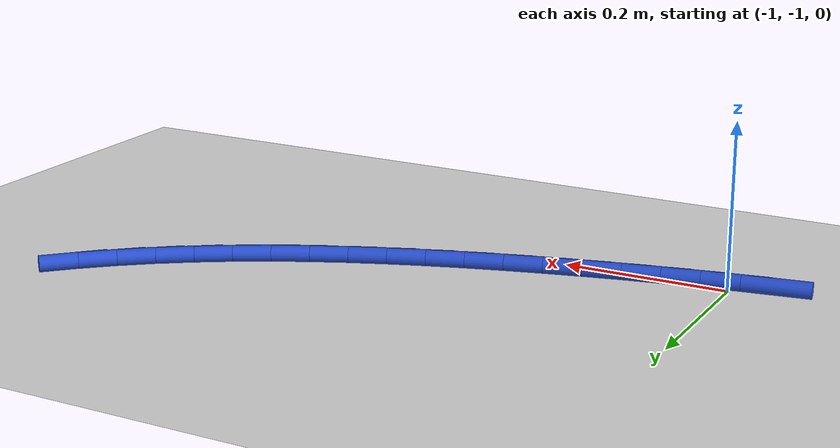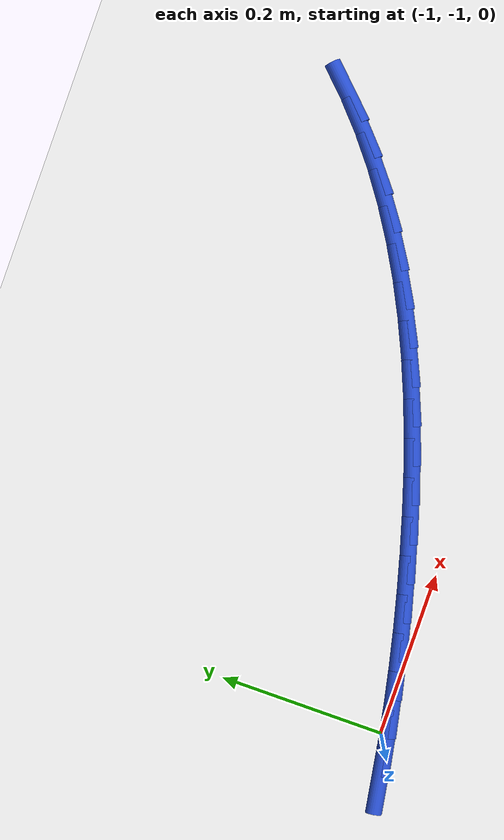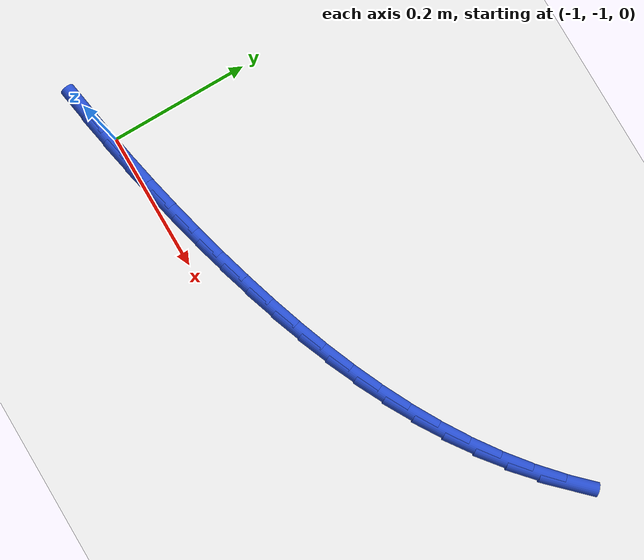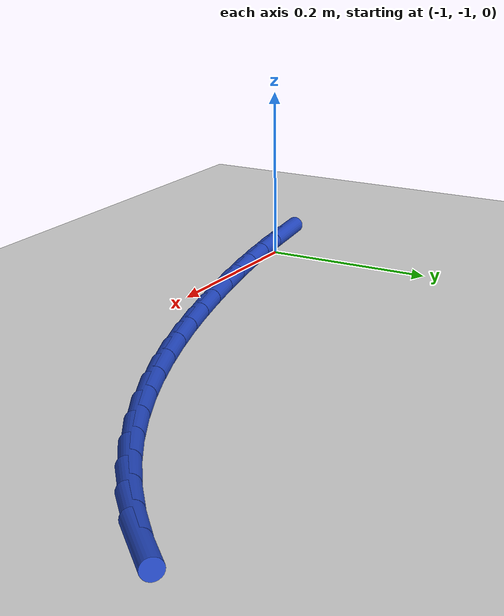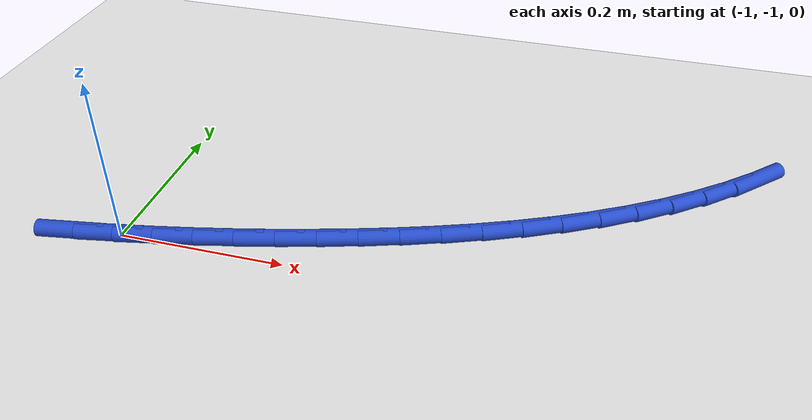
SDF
<sdf version="1.6">
 <world name="default">
  <model name="ground_plane">
   <static>1</static>
   <link name="link">
    <collision name="collision">
     <geometry><plane><normal>0 0 1</normal><size>100 100</size></plane></geometry>
     <surface><friction><ode><mu>100</mu><mu2>50</mu2></ode></friction></surface>
    </collision>
    <visual name="visual">
     <cast_shadows>0</cast_shadows>
     <geometry><plane><normal>0 0 1</normal><size>100 100</size></plane></geometry>
     <material>
      <script><uri>file://media/materials/scripts/gazebo.material</uri><name>Gazebo/WhiteGlow</name></script>
     </material>
    </visual>
   </link>
  </model>
  <model name="line">
   <link name="link_115">
    <pose>-1.0518412274918332 -1.016220963394209 0.01 0 1.57 0.15997338928918414</pose>
    <collision name="collision">
     <geometry><cylinder><radius>0.01</radius><length>0.08</length></cylinder></geometry>
    </collision>
    <visual name="visual">
     <material>
      <script><name>Gazebo/Blue</name><uri>file://media/materials/scripts/gazebo.material</uri></script>
     </material>
     <geometry><cylinder><radius>0.01</radius><length>0.08</length></cylinder></geometry>
    </visual>
   </link>
   <link name="link_116">
    <pose>-1.0066407417614862 -1.0089277675191928 0.01 0 1.57 0.1820671145373733</pose>
    <collision name="collision">
     <geometry><cylinder><radius>0.01</radius><length>0.08</length></cylinder></geometry>
    </collision>
    <visual name="visual">
     <material>
      <script><name>Gazebo/Blue</name><uri>file://media/materials/scripts/gazebo.material</uri></script>
     </material>
     <geometry><cylinder><radius>0.01</radius><length>0.08</length></cylinder></geometry>
    </visual>
   </link>
   <link name="link_117">
    <pose>-0.961563545083438 -1.0006287897275916 0.01 0 1.57 0.2033848215068793</pose>
    <collision name="collision">
     <geometry><cylinder><radius>0.01</radius><length>0.08</length></cylinder></geometry>
    </collision>
    <visual name="visual">
     <material>
      <script><name>Gazebo/Blue</name><uri>file://media/materials/scripts/gazebo.material</uri></script>
     </material>
     <geometry><cylinder><radius>0.01</radius><length>0.08</length></cylinder></geometry>
    </visual>
   </link>
   <link name="link_118">
    <pose>-0.9165846387984776 -0.9913525030561621 0.01 0 1.57 0.22388526568458142</pose>
    <collision name="collision">
     <geometry><cylinder><radius>0.01</radius><length>0.08</length></cylinder></geometry>
    </collision>
    <visual name="visual">
     <material>
      <script><name>Gazebo/Blue</name><uri>file://media/materials/scripts/gazebo.material</uri></script>
     </material>
     <geometry><cylinder><radius>0.01</radius><length>0.08</length></cylinder></geometry>
    </visual>
   </link>
   <link name="link_119">
    <pose>-0.8716790242473987 -0.9811273805416627 0.01 0 1.57 0.2435336659757726</pose>
    <collision name="collision">
     <geometry><cylinder><radius>0.01</radius><length>0.08</length></cylinder></geometry>
    </collision>
    <visual name="visual">
     <material>
      <script><name>Gazebo/Blue</name><uri>file://media/materials/scripts/gazebo.material</uri></script>
     </material>
     <geometry><cylinder><radius>0.01</radius><length>0.08</length></cylinder></geometry>
    </visual>
   </link>
   <link name="link_120">
    <pose>-0.8268217027709909 -0.9699818952208503 0.01 0 1.57 0.2623176508304362</pose>
    <collision name="collision">
     <geometry><cylinder><radius>0.01</radius><length>0.08</length></cylinder></geometry>
    </collision>
    <visual name="visual">
     <material>
      <script><name>Gazebo/Blue</name><uri>file://media/materials/scripts/gazebo.material</uri></script>
     </material>
     <geometry><cylinder><radius>0.01</radius><length>0.08</length></cylinder></geometry>
    </visual>
   </link>
   <link name="link_121">
    <pose>-0.7819883966441457 -0.9579439399140669 0.01 0 1.57 0.2816082944401738</pose>
    <collision name="collision">
     <geometry><cylinder><radius>0.01</radius><length>0.08</length></cylinder></geometry>
    </collision>
    <visual name="visual">
     <material>
      <script><name>Gazebo/Blue</name><uri>file://media/materials/scripts/gazebo.material</uri></script>
     </material>
     <geometry><cylinder><radius>0.01</radius><length>0.08</length></cylinder></geometry>
    </visual>
   </link>
   <link name="link_122">
    <pose>-0.7372166666986409 -0.9449916390288912 0.01 0 1.57 0.3038957433538385</pose>
    <collision name="collision">
     <geometry><cylinder><radius>0.01</radius><length>0.08</length></cylinder></geometry>
    </collision>
    <visual name="visual">
     <material>
      <script><name>Gazebo/Blue</name><uri>file://media/materials/scripts/gazebo.material</uri></script>
     </material>
     <geometry><cylinder><radius>0.01</radius><length>0.08</length></cylinder></geometry>
    </visual>
   </link>
   <link name="link_123">
    <pose>-0.6926524830506744 -0.9310158678796732 0.01 0 1.57 0.3295482642773459</pose>
    <collision name="collision">
     <geometry><cylinder><radius>0.01</radius><length>0.08</length></cylinder></geometry>
    </collision>
    <visual name="visual">
     <material>
      <script><name>Gazebo/Blue</name><uri>file://media/materials/scripts/gazebo.material</uri></script>
     </material>
     <geometry><cylinder><radius>0.01</radius><length>0.08</length></cylinder></geometry>
    </visual>
   </link>
   <link name="link_124">
    <pose>-0.6484527813486013 -0.9158986765888811 0.01 0 1.57 0.35871456310700517</pose>
    <collision name="collision">
     <geometry><cylinder><radius>0.01</radius><length>0.08</length></cylinder></geometry>
    </collision>
    <visual name="visual">
     <material>
      <script><name>Gazebo/Blue</name><uri>file://media/materials/scripts/gazebo.material</uri></script>
     </material>
     <geometry><cylinder><radius>0.01</radius><length>0.08</length></cylinder></geometry>
    </visual>
   </link>
   <link name="link_125">
    <pose>-0.6047744972407759 -0.8995221152789818 0.01 0 1.57 0.39156166444364054</pose>
    <collision name="collision">
     <geometry><cylinder><radius>0.01</radius><length>0.08</length></cylinder></geometry>
    </collision>
    <visual name="visual">
     <material>
      <script><name>Gazebo/Blue</name><uri>file://media/materials/scripts/gazebo.material</uri></script>
     </material>
     <geometry><cylinder><radius>0.01</radius><length>0.08</length></cylinder></geometry>
    </visual>
   </link>
   <link name="link_126">
    <pose>-0.5617745663755506 -0.8817682340724422 0.01 0 1.57 0.42826563066687007</pose>
    <collision name="collision">
     <geometry><cylinder><radius>0.01</radius><length>0.08</length></cylinder></geometry>
    </collision>
    <visual name="visual">
     <material>
      <script><name>Gazebo/Blue</name><uri>file://media/materials/scripts/gazebo.material</uri></script>
     </material>
     <geometry><cylinder><radius>0.01</radius><length>0.08</length></cylinder></geometry>
    </visual>
   </link>
   <link name="link_127">
    <pose>-0.5196099244012805 -0.8625190830917291 0.01 0 1.57 0.4689991593552063</pose>
    <collision name="collision">
     <geometry><cylinder><radius>0.01</radius><length>0.08</length></cylinder></geometry>
    </collision>
    <visual name="visual">
     <material>
      <script><name>Gazebo/Blue</name><uri>file://media/materials/scripts/gazebo.material</uri></script>
     </material>
     <geometry><cylinder><radius>0.01</radius><length>0.08</length></cylinder></geometry>
    </visual>
   </link>
   <link name="link_128">
    <pose>-0.4784375069663181 -0.8416567124593094 0.01 0 1.57 0.513915245584349</pose>
    <collision name="collision">
     <geometry><cylinder><radius>0.01</radius><length>0.08</length></cylinder></geometry>
    </collision>
    <visual name="visual">
     <material>
      <script><name>Gazebo/Blue</name><uri>file://media/materials/scripts/gazebo.material</uri></script>
     </material>
     <geometry><cylinder><radius>0.01</radius><length>0.08</length></cylinder></geometry>
    </visual>
   </link>
   <link name="link_129">
    <pose>-0.4384142497190179 -0.8190631722976499 0.01 0 1.57 0.5631263519577232</pose>
    <collision name="collision">
     <geometry><cylinder><radius>0.01</radius><length>0.08</length></cylinder></geometry>
    </collision>
    <visual name="visual">
     <material>
      <script><name>Gazebo/Blue</name><uri>file://media/materials/scripts/gazebo.material</uri></script>
     </material>
     <geometry><cylinder><radius>0.01</radius><length>0.08</length></cylinder></geometry>
    </visual>
   </link>
   <link name="link_130">
    <pose>-0.3996970883077343 -0.7946205127292186 0.01 0 1.57 0.6166791109103165</pose>
    <collision name="collision">
     <geometry><cylinder><radius>0.01</radius><length>0.08</length></cylinder></geometry>
    </collision>
    <visual name="visual">
     <material>
      <script><name>Gazebo/Blue</name><uri>file://media/materials/scripts/gazebo.material</uri></script>
     </material>
     <geometry><cylinder><radius>0.01</radius><length>0.08</length></cylinder></geometry>
    </visual>
   </link>
   <link name="link_131">
    <pose>-0.3624429583808198 -0.7682107838764811 0.01 0 1.57 0.6745238245945421</pose>
    <collision name="collision">
     <geometry><cylinder><radius>0.01</radius><length>0.08</length></cylinder></geometry>
    </collision>
    <visual name="visual">
     <material>
      <script><name>Gazebo/Blue</name><uri>file://media/materials/scripts/gazebo.material</uri></script>
     </material>
     <geometry><cylinder><radius>0.01</radius><length>0.08</length></cylinder></geometry>
    </visual>
   </link>
   <link name="link_132">
    <pose>-0.32680875487805616 -0.7397161072455494 0.01 0 1.57 0.7349473865299818</pose>
    <collision name="collision">
     <geometry><cylinder><radius>0.01</radius><length>0.08</length></cylinder></geometry>
    </collision>
    <visual name="visual">
     <material>
      <script><name>Gazebo/Blue</name><uri>file://media/materials/scripts/gazebo.material</uri></script>
     </material>
     <geometry><cylinder><radius>0.01</radius><length>0.08</length></cylinder></geometry>
    </visual>
   </link>
   <link name="link_133">
    <pose>-0.2929156470976952 -0.7090812502736422 0.01 0 1.57 0.7934370510192803</pose>
    <collision name="collision">
     <geometry><cylinder><radius>0.01</radius><length>0.08</length></cylinder></geometry>
    </collision>
    <visual name="visual">
     <material>
      <script><name>Gazebo/Blue</name><uri>file://media/materials/scripts/gazebo.material</uri></script>
     </material>
     <geometry><cylinder><radius>0.01</radius><length>0.08</length></cylinder></geometry>
    </visual>
   </link>
  </model>
 </world>
</sdf>
